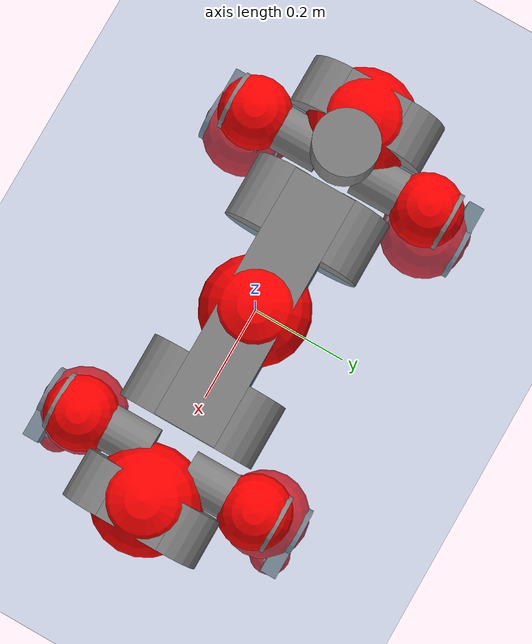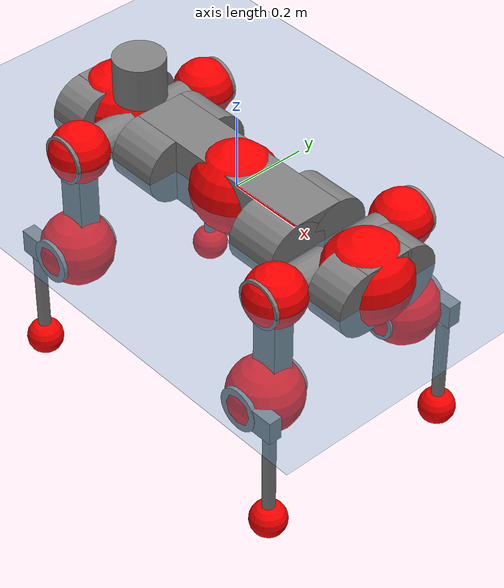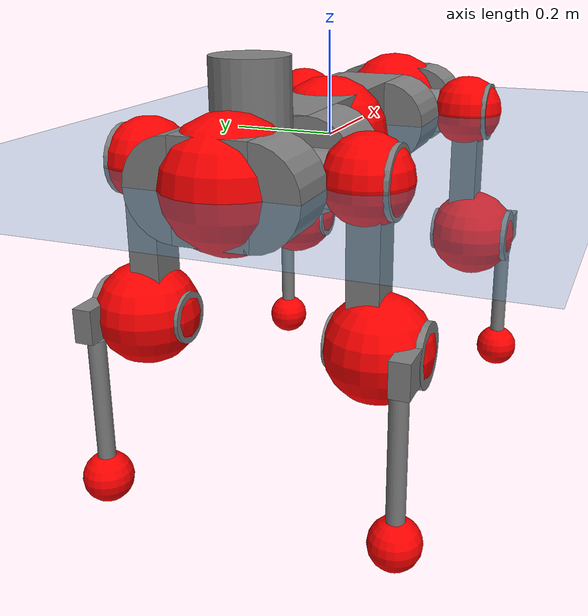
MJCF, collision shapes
<mujoco model="anymal_c">
  <compiler angle="radian" assetdir="assets" balanceinertia="true" inertiafromgeom="false"/>

  <option timestep="0.005" density="1.2" viscosity="2e-05"/>

  <size nkey="1"/>

  <visual>
    <quality shadowsize="8192"/>
    <map shadowclip="0.5"/>
  </visual>

  <default>
    <default class="/">
      <material specular="0" shininess="0.25"/>
      <geom contype="0" conaffinity="0" group="1" solref="-1000 -80"/>
      <site size="0.01 0.005 0.005" group="5"/>
      <general forcelimited="true" forcerange="-80 80" biastype="affine" gainprm="80" biasprm="0 -80 -2"/>
      <default class="anymal_c">
        <joint armature="0.01" damping="0.01" frictionloss="0.1"/>
        <default class="visual">
          <geom type="mesh" group="2"/>
          <default class="visual_zflip"/>
        </default>
        <default class="collision">
          <geom type="cylinder" group="3"/>
          <default class="foot">
            <geom size="0.03 0 0" type="sphere" condim="6" priority="1" friction="0.8 0.02 0.01" solimp="0.015 1 0.03"/>
          </default>
        </default>
      </default>
      <default class="reward_collision_sphere">
        <geom group="5" rgba="1 0 0 1"/>
      </default>
    </default>
  </default>

  <asset>
    <texture type="skybox" colorspace="auto" name="//unnamed_texture_0" builtin="gradient" rgb1="0.95 0.95 0.95" rgb2="0.95 0.95 0.95" width="100" height="600"/>
    <texture type="2d" colorspace="auto" name="texplane" builtin="checker" rgb1="0.345 0.575 0.748" rgb2="0.345 0.575 0.748" markrgb="1 1 1" width="512" height="512"/>
    <texture type="2d" colorspace="linear" name="base" file="base.png"/>
    <texture type="2d" colorspace="linear" name="top_shell" file="top_shell.png"/>
    <texture type="2d" colorspace="linear" name="bottom_shell" file="bottom_shell.png"/>
    <texture type="2d" colorspace="linear" name="remote" file="remote.png"/>
    <texture type="2d" colorspace="linear" name="hatch" file="hatch.png"/>
    <texture type="2d" colorspace="linear" name="handle" file="handle.png"/>
    <texture type="2d" colorspace="linear" name="face" file="face.png"/>
    <texture type="2d" colorspace="linear" name="battery" file="battery.png"/>
    <texture type="2d" colorspace="linear" name="lidar_cage" file="lidar_cage.png"/>
    <texture type="2d" colorspace="linear" name="depth_camera" file="depth_camera.png"/>
    <texture type="2d" colorspace="linear" name="wide_angle_camera" file="wide_angle_camera.png"/>
    <texture type="2d" colorspace="linear" name="lidar" file="lidar.png"/>
    <texture type="2d" colorspace="linear" name="drive" file="drive.png"/>
    <texture type="2d" colorspace="linear" name="hip_l" file="hip_l.png"/>
    <texture type="2d" colorspace="linear" name="shank_l" file="shank_l.png"/>
    <texture type="2d" colorspace="linear" name="foot" file="foot.png"/>
    <texture type="2d" colorspace="linear" name="thigh" file="thigh.png"/>
    <texture type="2d" colorspace="linear" name="shank_r" file="shank_r.png"/>
    <texture type="2d" colorspace="linear" name="hip_r" file="hip_r.png"/>
    <material name="MatPlane" class="/" texture="texplane" texuniform="true" texrepeat="2 2" specular="0.9" shininess="0.5"/>
    <material name="black_plastic" class="/" rgba="0.007 0.007 0.007 1"/>
    <material name="green" class="/" rgba="0.052 0.178 0.033 1"/>
    <material name="red" class="/" rgba="0.178 0.006 0.005 1"/>
    <material name="yellow" class="/" rgba="0.178 0.119 0.006 1"/>
    <material name="lwl" class="/" rgba="0.8 0.8 0.8 1"/>
    <material name="base" class="/" texture="base"/>
    <material name="top_shell" class="/" texture="top_shell"/>
    <material name="bottom_shell" class="/" texture="bottom_shell"/>
    <material name="hip_l" class="/" texture="hip_l"/>
    <material name="thigh" class="/" texture="thigh"/>
    <material name="shank_l" class="/" texture="shank_l"/>
    <material name="foot" class="/" texture="foot"/>
    <material name="hip_r" class="/" texture="hip_r"/>
    <material name="shank" class="/" texture="shank_r"/>
    <material name="hatch" class="/" texture="hatch"/>
    <material name="remote" class="/" texture="remote"/>
    <material name="handle" class="/" texture="handle"/>
    <material name="face" class="/" texture="face"/>
    <material name="depth_camera" class="/" texture="depth_camera"/>
    <material name="wide_angle_camera" class="/" texture="wide_angle_camera"/>
    <material name="battery" class="/" texture="battery"/>
    <material name="lidar_cage" class="/" texture="lidar_cage"/>
    <material name="lidar" class="/" texture="lidar"/>
    <material name="drive" class="/" texture="drive"/>
    <mesh name="base_0" class="/" file="base_0.obj"/>
    <mesh name="base_1" class="/" file="base_1.obj"/>
    <mesh name="base_2" class="/" file="base_2.obj"/>
    <mesh name="base_3" class="/" file="base_3.obj"/>
    <mesh name="base_4" class="/" file="base_4.obj"/>
    <mesh name="base_5" class="/" file="base_5.obj"/>
    <mesh name="top_shell" class="/" file="top_shell.obj"/>
    <mesh name="bottom_shell" class="/" file="bottom_shell.obj"/>
    <mesh name="remote" class="/" file="remote.obj"/>
    <mesh name="handle" class="/" file="handle.obj"/>
    <mesh name="face" class="/" file="face.obj"/>
    <mesh name="wide_angle_camera" class="/" file="wide_angle_camera.obj"/>
    <mesh name="depth_camera" class="/" file="depth_camera.obj"/>
    <mesh name="battery" class="/" file="battery.obj"/>
    <mesh name="lidar_cage" class="/" file="lidar_cage.obj"/>
    <mesh name="lidar" class="/" file="lidar.obj"/>
    <mesh name="drive" class="/" file="drive.obj"/>
    <mesh name="hip_l" class="/" file="hip_l.obj"/>
    <mesh name="thigh" class="/" file="thigh.obj"/>
    <mesh name="shank_l" class="/" file="shank_l.obj"/>
    <mesh name="foot" class="/" file="foot.obj"/>
    <mesh name="hip_r" class="/" file="hip_r.obj"/>
    <mesh name="hatch" class="/" file="hatch.obj"/>
    <mesh name="shank_r" class="/" file="shank_r.obj"/>
  </asset>

  <worldbody>
    <geom name="floor" class="/" size="100 100 0.125" type="plane" group="0" material="MatPlane"/>
    <light name="toplight_shadow" class="/" pos="0 0 5" dir="0.0990148 0.0990148 -0.990148" type="directional" ambient="0.04 0.04 0.04" diffuse="0.55 0.55 0.55" specular="0.12 0.12 0.12"/>
    <light name="toplight_fill" class="/" pos="0 0 5" dir="0.0990148 0.0990148 -0.990148" type="directional" castshadow="false" ambient="0.04 0.04 0.04" diffuse="0.3 0.3 0.3" specular="0.08 0.08 0.08"/>
    <body name="trunk" childclass="anymal_c" pos="0.000118612 4.06416e-05 -0.000612539" quat="1 -1.30188e-05 5.20851e-06 -5.86069e-06">
      <inertial pos="0.00261498 0.00204751 0.0493172" quat="0.499903 0.499881 0.500004 0.500213" mass="16.8677" diaginertia="0.540749 0.402246 0.211298"/>
      <joint name="//unnamed_joint_0" type="free" armature="0" damping="0" frictionloss="0"/>
      <geom name="//unnamed_geom_1" class="visual" material="green" mesh="base_0"/>
      <geom name="//unnamed_geom_2" class="visual" material="yellow" mesh="base_1"/>
      <geom name="//unnamed_geom_3" class="visual" material="red" mesh="base_2"/>
      <geom name="//unnamed_geom_4" class="visual" material="black_plastic" mesh="base_3"/>
      <geom name="//unnamed_geom_5" class="visual" material="lwl" mesh="base_4"/>
      <geom name="//unnamed_geom_6" class="visual" material="base" mesh="base_5"/>
      <geom name="trunk_1" class="collision" size="0.27751 0.0669851 0.0861238" type="box"/>
      <geom name="trunk_2" class="collision" size="0.0861238 0.0693775" pos="0.209304 0.0639938 0" quat="0.707107 0 0.707107 0"/>
      <geom name="trunk_3" class="collision" size="0.0861238 0.0693775" pos="-0.209304 0.0639938 0" quat="0.707107 0 0.707107 0"/>
      <geom name="trunk_4" class="collision" size="0.0861238 0.0693775" pos="0.209304 -0.0639938 0" quat="0.707107 0 0.707107 0"/>
      <geom name="trunk_5" class="collision" size="0.0861238 0.0693775" pos="-0.209304 -0.0639938 0" quat="0.707107 0 0.707107 0"/>
      <geom name="//unnamed_geom_12" class="visual" material="top_shell" mesh="top_shell"/>
      <geom name="//unnamed_geom_13" class="visual" material="bottom_shell" mesh="bottom_shell"/>
      <geom name="//unnamed_geom_14" class="visual" material="remote" mesh="remote"/>
      <geom name="//unnamed_geom_15" class="visual" material="handle" mesh="handle"/>
      <geom name="//unnamed_geom_16" class="visual" pos="0.39888 0 0" quat="1 0 0 0" material="face" mesh="face"/>
      <geom name="trunk_6" class="collision" size="0.0526312 0.0669851 0.0861238" pos="0.451807 0 0" type="box"/>
      <geom name="//unnamed_geom_18" class="collision" size="0.0861238 0.0526312" pos="0.451807 0.0639938 0" quat="0.707107 0 0.707107 0"/>
      <geom name="//unnamed_geom_19" class="collision" size="0.0861238 0.0526312" pos="0.451807 -0.0639938 0" quat="0.707107 0 0.707107 0"/>
      <geom name="//unnamed_geom_20" class="visual" pos="0.444254 0 -0.0292759" quat="0.965926 0 0.258819 0" material="depth_camera" mesh="depth_camera"/>
      <geom name="//unnamed_geom_21" class="visual" pos="0.493668 0 0.0148843" material="wide_angle_camera" mesh="wide_angle_camera"/>
      <geom name="//unnamed_geom_22" class="visual_zflip" pos="-0.39888 0 0" quat="0 0 0 1" material="face" mesh="face"/>
      <geom name="trunk_7" class="collision" size="0.0526312 0.0669851 0.0861238" pos="-0.451807 0 0" quat="0 0 0 1" type="box"/>
      <geom name="//unnamed_geom_24" class="collision" size="0.0861238 0.0526312" pos="-0.451807 -0.0639938 0" quat="0 -0.707107 0 0.707107"/>
      <geom name="//unnamed_geom_25" class="collision" size="0.0861238 0.0526312" pos="-0.451807 0.0639938 0" quat="0 -0.707107 0 0.707107"/>
      <geom name="//unnamed_geom_26" class="visual" pos="-0.444254 0 -0.0292759" quat="0 -0.258819 0 0.965926" material="depth_camera" mesh="depth_camera"/>
      <geom name="//unnamed_geom_27" class="visual_zflip" pos="-0.493668 0 0.0148843" quat="0 0 0 1" material="wide_angle_camera" mesh="wide_angle_camera"/>
      <geom name="//unnamed_geom_28" class="visual" material="battery" mesh="battery"/>
      <geom name="//unnamed_geom_29" class="visual" pos="0 0.0692695 0.0286409" quat="0.683013 -0.183013 0.183013 0.683013" material="depth_camera" mesh="depth_camera"/>
      <geom name="//unnamed_geom_30" class="visual" pos="0 -0.0692695 0.0286409" quat="0.683013 0.183013 0.183013 -0.683013" material="depth_camera" mesh="depth_camera"/>
      <geom name="//unnamed_geom_31" class="visual" pos="-0.350283 0 0.0730795" quat="1 0 0 0" material="lidar_cage" mesh="lidar_cage"/>
      <geom name="trunk_8" class="collision" size="0.0669851 0.0574158" pos="-0.350283 0 0.132736"/>
      <geom name="//unnamed_geom_33" class="visual" pos="-0.350283 -1.89041e-05 0.141386" quat="0.707107 0 0 -0.707107" material="lidar" mesh="lidar"/>
      <geom name="//unnamed_geom_34" class="visual" pos="0.288598 0.095105 -1.3814e-09" quat="0.258819 0.965926 0 0" material="drive" mesh="drive"/>
      <geom name="//unnamed_geom_35" class="visual" pos="0.288598 -0.095105 1.3814e-09" quat="0.258819 -0.965926 0 0" material="drive" mesh="drive"/>
      <geom name="//unnamed_geom_36" class="visual" pos="-0.288598 0.095105 1.3814e-09" quat="0 0 0.965926 -0.258819" material="drive" mesh="drive"/>
      <geom name="//unnamed_geom_37" class="visual" pos="-0.288598 -0.095105 -1.3814e-09" quat="0 0 -0.965926 -0.258819" material="drive" mesh="drive"/>
      <geom name="//unnamed_geom_38" class="visual" pos="0.111629 0 0.0725823" quat="1 0 0 0" material="hatch" mesh="hatch"/>
      <geom name="//unnamed_geom_39" class="reward_collision_sphere" size="0.114832"/>
      <geom name="//unnamed_geom_40" class="reward_collision_sphere" size="0.114832" pos="0.433042 0 0"/>
      <geom name="//unnamed_geom_41" class="reward_collision_sphere" size="0.114832" pos="-0.433042 0 0"/>
      <site name="imu" pos="0.234262 0.00967179 0.0408654" size="0.00956931"/>
      <camera name="track" pos="0 -1.8284 0" quat="0.707107 0.707107 0 0" mode="trackcom"/>
      <camera name="ego_camera" pos="0.433042 0 -0.0397711" quat="-0.5 -0.5 0.5 0.5"/>
      <body name="LF_HIP" pos="0.289295 0.095493 0.000554449" quat="0.258358 0.966049 5.12954e-05 -0.000210974">
        <inertial pos="0.0529813 -0.013505 -0.00751555" quat="-0.127302 0.710224 -0.13449 0.679182" mass="2.48882" diaginertia="0.0048866 0.0031969 0.00322278"/>
        <joint name="LF_HAA" pos="0 0 0" axis="0.999998 0.00184582 -0.000993643" range="-0.700709 0.489745" armature="0.00955018" damping="0.00749689" frictionloss="0.0887548"/>
        <geom name="//unnamed_geom_42" class="visual" pos="0 -8.12616e-05 1.33472e-05" quat="0.258819 -0.965926 0 0" material="hip_l" mesh="hip_l"/>
        <geom name="//unnamed_geom_43" class="visual" pos="0.0576427 -0.0692413 -0.0405688" quat="0.183013 -0.683013 0.683013 0.183013" material="drive" mesh="drive"/>
        <geom name="//unnamed_geom_44" class="collision" size="0.0478465 0.0669851" pos="0.0576427 -0.0109336 -0.00686549" quat="-0.353553 -0.612372 0.612372 -0.353553"/>
        <body name="LF_THIGH" pos="0.058112 -0.0661484 -0.0421386" quat="0.183278 -0.683005 0.682891 0.18323">
          <inertial pos="0.0300141 0.00014538 -0.243779" quat="0.993191 -0.00562364 -0.079975 0.0845203" mass="2.60677" diaginertia="0.0250327 0.0189091 0.00385733"/>
          <joint name="LF_HFE" pos="0 0 0" axis="0.999998 -0.0013025 -0.00153786" stiffness="0.00330144" range="-3.15106 3.11986" armature="0.00934513" damping="0.00876452" frictionloss="0.0982929"/>
          <geom name="//unnamed_geom_45" class="visual" pos="0.000957353 1.50856e-06 0" quat="0.707107 0 0 -0.707107" material="thigh" mesh="thigh"/>
          <geom name="//unnamed_geom_46" class="collision" size="0.0622005 0.0382772" pos="0.0384926 0 0" quat="0.5 0.5 -0.5 -0.5"/>
          <geom name="//unnamed_geom_47" class="collision" size="0.0358849 0.0287079 0.135228" pos="0.0288695 0 -0.140505" quat="0.707107 0 0 -0.707107" type="box"/>
          <geom name="//unnamed_geom_48" class="visual" pos="0.0965202 0 -0.283369" quat="1 0 0 0" material="drive" mesh="drive"/>
          <geom name="//unnamed_geom_49" class="collision" size="0.0478465 0.0669851" pos="0.0291582 0 -0.283369" quat="0.707107 0 0.707107 0"/>
          <geom name="//unnamed_geom_50" class="reward_collision_sphere" size="0.0765544" pos="0.0240579 0 0"/>
          <body name="LF_SHANK" pos="0.097276 -0.000186608 -0.283165" quat="0.999999 -0.00107232 0.000173958 4.9609e-06">
            <inertial pos="0.00477502 -0.0559845 -0.0804572" quat="0.992904 -0.116244 -0.00138862 -0.025047" mass="0.516753" diaginertia="0.0084002 0.00577892 0.00108268"/>
            <joint name="LF_KFE" pos="0 0 0" axis="1 -8.34378e-05 -0.000387448" range="-3.13256 3.14071" armature="0.00995485" damping="0.0158508" frictionloss="0.0926588"/>
            <geom name="//unnamed_geom_51" class="visual" pos="0.000312172 0.00166452 0" quat="0.707107 0 0 -0.707107" material="shank_l" mesh="shank_l"/>
            <geom name="LF_kfe_act" class="collision" size="0.0574158 0.0191386" pos="0.0192463 0 0" quat="0.5 0.5 -0.5 -0.5"/>
            <geom name="//unnamed_geom_53" class="collision" size="0.0550226 0.0322964 0.0181817" pos="0.0192463 -0.0525655 0" quat="0.5 0.5 -0.5 -0.5" type="box"/>
            <geom name="//unnamed_geom_54" class="visual" pos="0.0125581 -0.0798673 -0.336036" quat="0.382683 0 0 -0.92388" material="foot" mesh="foot"/>
            <geom name="LF_calf" class="collision" size="0.0167463 0.135168" pos="0.0125582 -0.0804037 -0.168018" quat="0.707107 0 0 -0.707107"/>
            <geom name="LF_foot" class="foot" size="0.0308419" pos="0.0125582 -0.0804037 -0.313665" quat="0.707107 0 0 -0.707107"/>
            <geom name="//unnamed_geom_57" class="reward_collision_sphere" size="0.0956931" pos="-0.0481158 0 0"/>
            <geom name="//unnamed_geom_58" class="reward_collision_sphere" size="0.0478465" pos="0.0125582 -0.0804037 -0.313665"/>
            <site name="LF_foot" class="foot" pos="0.0125582 -0.0804037 -0.313665" quat="0.707107 0 0 -0.707107" size="0.00956931"/>
          </body>
        </body>
      </body>
      <body name="RF_HIP" pos="0.288137 -0.0954448 0.000162053" quat="0.25895 -0.965891 -0.000470161 -9.73508e-05">
        <inertial pos="0.0546582 0.0143923 -0.00825323" quat="0.135441 0.678944 0.128412 0.710071" mass="2.35169" diaginertia="0.00469356 0.00309485 0.00319702"/>
        <joint name="RF_HAA" pos="0 0 0" axis="0.999995 0.000553884 0.00322207" range="-0.473013 0.682381" armature="0.0097081" damping="0.00502884" frictionloss="0.0950664"/>
        <geom name="//unnamed_geom_59" class="visual" pos="0 8.12609e-05 1.33471e-05" quat="0.258819 0.965926 0 0" material="hip_r" mesh="hip_r"/>
        <geom name="//unnamed_geom_60" class="visual" pos="0.0576427 0.0692413 -0.0405688" quat="0.183013 0.683013 0.683013 -0.183013" material="drive" mesh="drive"/>
        <geom name="//unnamed_geom_61" class="collision" size="0.0478465 0.0669851" pos="0.0576427 0.0109336 -0.00686549" quat="-0.353553 0.612372 0.612372 0.353553"/>
        <body name="RF_THIGH" pos="0.0603295 0.0660426 -0.0422322" quat="0.182702 0.683034 0.683179 -0.182625">
          <inertial pos="0.0296168 -0.000314115 -0.244004" quat="0.992774 -0.00529579 -0.0806162 0.0887253" mass="2.79474" diaginertia="0.0250655 0.0198874 0.00417564"/>
          <joint name="RF_HFE" pos="0 0 0" axis="0.999944 0.00886557 0.00580223" stiffness="0.0057307" range="-3.09401 3.09893" armature="0.00945387" damping="0.00189593" frictionloss="0.098447"/>
          <geom name="//unnamed_geom_62" class="visual" pos="0.000957353 1.50856e-06 0" quat="0.707107 0 0 -0.707107" material="thigh" mesh="thigh"/>
          <geom name="//unnamed_geom_63" class="collision" size="0.0622005 0.0382772" pos="0.0384926 0 0" quat="0.5 0.5 0.5 0.5"/>
          <geom name="//unnamed_geom_64" class="collision" size="0.0358849 0.0287079 0.135228" pos="0.0288695 0 -0.140505" quat="0.707107 0 0 0.707107" type="box"/>
          <geom name="//unnamed_geom_65" class="visual" pos="0.0965202 0 -0.283369" quat="1 0 0 0" material="drive" mesh="drive"/>
          <geom name="//unnamed_geom_66" class="collision" size="0.0478465 0.0669851" pos="0.0291582 0 -0.283369" quat="0.707107 0 0.707107 0"/>
          <geom name="//unnamed_geom_67" class="reward_collision_sphere" size="0.0765544" pos="0.0240579 0 0"/>
          <body name="RF_SHANK" pos="0.0983778 -0.000677711 -0.283777" quat="1 -4.79477e-05 1.30481e-05 1.55577e-05">
            <inertial pos="0.00651114 0.0565771 -0.077677" quat="0.993459 0.111656 -0.000783285 0.0239112" mass="0.500238" diaginertia="0.0083795 0.00591696 0.0010913"/>
            <joint name="RF_KFE" pos="0 0 0" axis="0.999908 0.0126239 -0.00499003" range="-3.15433 3.10738" armature="0.00963721" damping="0.0097098" frictionloss="0.0840229"/>
            <geom name="//unnamed_geom_68" class="visual" pos="0.00031217 -0.00166451 0" quat="0.707107 0 0 0.707107" material="shank" mesh="shank_r"/>
            <geom name="RF_kfe_act" class="collision" size="0.0574158 0.0191386" pos="0.0192463 0 0" quat="0.5 0.5 0.5 0.5"/>
            <geom name="//unnamed_geom_70" class="collision" size="0.0550226 0.0322964 0.0181817" pos="0.0192463 0.0525655 0" quat="0.5 0.5 0.5 0.5" type="box"/>
            <geom name="//unnamed_geom_71" class="visual" pos="0.0125583 0.0798673 -0.336036" quat="0.382683 0 0 0.92388" material="foot" mesh="foot"/>
            <geom name="RF_calf" class="collision" size="0.0167463 0.135168" pos="0.0125582 0.0804037 -0.168018" quat="0.707107 0 0 0.707107"/>
            <geom name="RF_foot" class="foot" size="0.029476" pos="0.0125582 0.0804037 -0.313665" quat="0.707107 0 0 0.707107"/>
            <geom name="//unnamed_geom_74" class="reward_collision_sphere" size="0.0956931" pos="-0.0481158 0 0"/>
            <geom name="//unnamed_geom_75" class="reward_collision_sphere" size="0.0478465" pos="0.0125582 0.0804037 -0.313665"/>
            <site name="RF_foot" class="foot" pos="0.0125582 0.0804037 -0.313665" quat="0.707107 0 0 0.707107" size="0.00956931"/>
          </body>
        </body>
      </body>
      <body name="LH_HIP" pos="-0.287859 0.0962974 0.000438278" quat="-4.73673e-07 4.92158e-06 0.965926 -0.258817">
        <inertial pos="0.0553631 0.0121664 -0.00824711" quat="0.127264 0.685029 0.121044 0.707027" mass="2.36215" diaginertia="0.00477502 0.00315216 0.00323392"/>
        <joint name="LH_HAA" pos="0 0 0" axis="0.999999 -0.00147661 0.000587975" range="-0.503421 0.738316" armature="0.00958794" damping="0.00813947" frictionloss="0.0929875"/>
        <geom name="//unnamed_geom_76" class="visual" pos="0 8.12609e-05 1.33471e-05" quat="-0.258819 -0.965926 0 0" material="hip_r" mesh="hip_r"/>
        <geom name="//unnamed_geom_77" class="visual" pos="0.0576427 0.0692413 -0.0405688" quat="0.183013 0.683013 0.683013 -0.183013" material="drive" mesh="drive"/>
        <geom name="//unnamed_geom_78" class="collision" size="0.0478465 0.0669851" pos="0.0576427 0.0109336 -0.00686549" quat="-0.353553 0.612372 0.612372 0.353553"/>
        <body name="LH_THIGH" pos="0.0569112 0.0649184 -0.0418115" quat="0.183019 0.68302 0.683006 -0.183002">
          <inertial pos="0.0307366 -0.000688808 -0.244022" quat="0.992694 -0.00351092 -0.0775704 0.0923585" mass="2.71509" diaginertia="0.0256344 0.0196679 0.00413339"/>
          <joint name="LH_HFE" pos="0 0 0" axis="0.999996 -0.00118995 0.00244216" range="-3.13918 3.14097" armature="0.00954877" damping="0.00845334" frictionloss="0.0949451"/>
          <geom name="//unnamed_geom_79" class="visual" pos="0.000957353 1.50856e-06 0" quat="0.707107 0 0 -0.707107" material="thigh" mesh="thigh"/>
          <geom name="//unnamed_geom_80" class="collision" size="0.0622005 0.0382772" pos="0.0384926 0 0" quat="0.5 0.5 -0.5 -0.5"/>
          <geom name="//unnamed_geom_81" class="collision" size="0.0358849 0.0287079 0.135228" pos="0.0288695 0 -0.140505" quat="0.707107 0 0 -0.707107" type="box"/>
          <geom name="//unnamed_geom_82" class="visual" pos="0.0965202 0 -0.283369" quat="1 0 0 0" material="drive" mesh="drive"/>
          <geom name="//unnamed_geom_83" class="collision" size="0.0478465 0.0669851" pos="0.0291582 0 -0.283369" quat="0.707107 0 0.707107 0"/>
          <geom name="//unnamed_geom_84" class="reward_collision_sphere" size="0.0765544" pos="0.0240579 0 0"/>
          <body name="LH_SHANK" pos="0.0976064 -0.000695348 -0.283753" quat="1 -2.1836e-05 -0.000180159 -0.00045854">
            <inertial pos="0.00631412 0.0569438 -0.0805776" quat="0.992934 0.115904 -0.00105611 0.0254427" mass="0.519919" diaginertia="0.00875581 0.0062316 0.0011566"/>
            <joint name="LH_KFE" pos="0 0 0" axis="0.999992 -0.00250564 -0.00320788" stiffness="0.000452522" range="-3.14583 3.09013" armature="0.00940475" damping="0.0136571" frictionloss="0.0922546"/>
            <geom name="//unnamed_geom_85" class="visual" pos="0.00031217 -0.00166451 0" quat="-0.707107 0 0 -0.707107" material="shank" mesh="shank_r"/>
            <geom name="LH_kfe_act" class="collision" size="0.0574158 0.0191386" pos="0.0192463 0 0" quat="0.5 0.5 -0.5 -0.5"/>
            <geom name="//unnamed_geom_87" class="collision" size="0.0550226 0.0322964 0.0181817" pos="0.0192463 0.0525655 0" quat="0.5 0.5 -0.5 -0.5" type="box"/>
            <geom name="//unnamed_geom_88" class="visual" pos="0.0125583 0.0798673 -0.336036" quat="-0.382683 0 0 -0.92388" material="foot" mesh="foot"/>
            <geom name="LH_calf" class="collision" size="0.0167463 0.135168" pos="0.0125582 0.0804037 -0.168018" quat="0.707107 0 0 -0.707107"/>
            <geom name="LH_foot" class="foot" size="0.027617" pos="0.0125582 0.0804037 -0.313665" quat="0.707107 0 0 -0.707107"/>
            <geom name="//unnamed_geom_91" class="reward_collision_sphere" size="0.0956931" pos="-0.0481158 0 0"/>
            <geom name="//unnamed_geom_92" class="reward_collision_sphere" size="0.0478465" pos="0.0125582 0.0804037 -0.313665"/>
            <site name="LH_foot" class="foot" pos="0.0125582 0.0804037 -0.313665" quat="0.707107 0 0 -0.707107" size="0.00956931"/>
          </body>
        </body>
      </body>
      <body name="RH_HIP" pos="-0.288349 -0.0942242 -5.02411e-05" quat="0.000186633 -0.000175127 -0.965696 -0.259676">
        <inertial pos="0.0540655 -0.0148099 -0.00761907" quat="-0.124814 0.713214 -0.1241 0.678488" mass="2.45453" diaginertia="0.00482045 0.00315798 0.00319407"/>
        <joint name="RH_HAA" pos="0 0 0" axis="0.999991 -0.00428449 -0.000389031" stiffness="0.000666339" range="-0.756074 0.476704" armature="0.00866904" damping="0.0103699" frictionloss="0.0959319"/>
        <geom name="//unnamed_geom_93" class="visual" pos="0 -8.12616e-05 1.33472e-05" quat="-0.258819 0.965926 0 0" material="hip_l" mesh="hip_l"/>
        <geom name="//unnamed_geom_94" class="visual" pos="0.0576427 -0.0692413 -0.0405688" quat="-0.183013 0.683013 -0.683013 -0.183013" material="drive" mesh="drive"/>
        <geom name="//unnamed_geom_95" class="collision" size="0.0478465 0.0669851" pos="0.0576427 -0.0109336 -0.00686549" quat="0.353553 0.612372 -0.612372 0.353553"/>
        <body name="RH_THIGH" pos="0.0572889 -0.0658467 -0.0439899" quat="-0.182883 0.68297 -0.683093 -0.183002">
          <inertial pos="0.0299049 0.00241066 -0.244351" quat="0.993214 -0.0106811 -0.0794901 0.0842162" mass="2.60042" diaginertia="0.0240823 0.0185519 0.003914"/>
          <joint name="RH_HFE" pos="0 0 0" axis="0.999998 -0.000904581 -0.00180121" range="-3.1594 3.10392" armature="0.0108481" damping="0.0089829" frictionloss="0.091043"/>
          <geom name="//unnamed_geom_96" class="visual" pos="0.000957353 1.50856e-06 0" quat="0.707107 0 0 -0.707107" material="thigh" mesh="thigh"/>
          <geom name="//unnamed_geom_97" class="collision" size="0.0622005 0.0382772" pos="0.0384926 0 0" quat="0.5 0.5 0.5 0.5"/>
          <geom name="//unnamed_geom_98" class="collision" size="0.0358849 0.0287079 0.135228" pos="0.0288695 0 -0.140505" quat="0.707107 0 0 0.707107" type="box"/>
          <geom name="//unnamed_geom_99" class="visual" pos="0.0965202 0 -0.283369" quat="1 0 0 0" material="drive" mesh="drive"/>
          <geom name="//unnamed_geom_100" class="collision" size="0.0478465 0.0669851" pos="0.0291582 0 -0.283369" quat="0.707107 0 0.707107 0"/>
          <geom name="//unnamed_geom_101" class="reward_collision_sphere" size="0.0765544" pos="0.0240579 0 0"/>
          <body name="RH_SHANK" pos="0.0958431 -0.000361942 -0.284379" quat="1 -2.77402e-05 0.000440492 -0.000113215">
            <inertial pos="0.00473497 -0.0556029 -0.0804736" quat="0.992438 -0.117773 0.00588067 -0.0340929" mass="0.507244" diaginertia="0.00843365 0.00601766 0.00113013"/>
            <joint name="RH_KFE" pos="0 0 0" axis="0.999991 -0.0035955 -0.002327" stiffness="0.00480422" range="-3.09787 3.17062" armature="0.00945052" damping="0.00842557" frictionloss="0.0966348"/>
            <geom name="//unnamed_geom_102" class="visual" pos="0.000312172 0.00166452 0" quat="0.707107 0 0 -0.707107" material="shank_l" mesh="shank_l"/>
            <geom name="RH_kfe_act" class="collision" size="0.0574158 0.0191386" pos="0.0192463 0 0" quat="0.5 0.5 0.5 0.5"/>
            <geom name="//unnamed_geom_104" class="collision" size="0.0550226 0.0322964 0.0181817" pos="0.0192463 -0.0525655 0" quat="0.5 0.5 0.5 0.5" type="box"/>
            <geom name="//unnamed_geom_105" class="visual" pos="0.0125581 -0.0798673 -0.336036" quat="0.382683 0 0 -0.92388" material="foot" mesh="foot"/>
            <geom name="RH_calf" class="collision" size="0.0167463 0.135168" pos="0.0125582 -0.0804037 -0.168018" quat="0.707107 0 0 0.707107"/>
            <geom name="RH_foot" class="foot" size="0.0246768" pos="0.0125582 -0.0804037 -0.313665" quat="0.707107 0 0 0.707107"/>
            <geom name="//unnamed_geom_108" class="reward_collision_sphere" size="0.0956931" pos="-0.0481158 0 0"/>
            <geom name="//unnamed_geom_109" class="reward_collision_sphere" size="0.0478465" pos="0.0125582 -0.0804037 -0.313665"/>
            <site name="RH_foot" class="foot" pos="0.0125582 -0.0804037 -0.313665" quat="0.707107 0 0 0.707107" size="0.00956931"/>
          </body>
        </body>
      </body>
    </body>
  </worldbody>

  <contact>
    <pair class="/" geom1="floor" geom2="LF_foot" name="//unnamed_contact_0"/>
    <pair class="/" geom1="floor" geom2="RF_foot" name="//unnamed_contact_1"/>
    <pair class="/" geom1="floor" geom2="LH_foot" name="//unnamed_contact_2"/>
    <pair class="/" geom1="floor" geom2="RH_foot" name="//unnamed_contact_3"/>
  </contact>

  <actuator>
    <general name="LF_HAA" class="/" joint="LF_HAA" forcerange="-78.8191 78.8191" gainprm="81.0022" biasprm="0 -81.0022 -1.90935"/>
    <general name="LF_HFE" class="/" joint="LF_HFE" forcerange="-69.7254 69.7254" gainprm="81.0022" biasprm="0 -81.0022 -1.90935"/>
    <general name="LF_KFE" class="/" joint="LF_KFE" forcerange="-74.8998 74.8998" gainprm="81.0022" biasprm="0 -81.0022 -1.90935"/>
    <general name="RF_HAA" class="/" joint="RF_HAA" forcerange="-79.5306 79.5306" gainprm="81.0022" biasprm="0 -81.0022 -1.90935"/>
    <general name="RF_HFE" class="/" joint="RF_HFE" forcerange="-75.035 75.035" gainprm="81.0022" biasprm="0 -81.0022 -1.90935"/>
    <general name="RF_KFE" class="/" joint="RF_KFE" forcerange="-79.1975 79.1975" gainprm="81.0022" biasprm="0 -81.0022 -1.90935"/>
    <general name="LH_HAA" class="/" joint="LH_HAA" forcerange="-78.0552 78.0552" gainprm="81.0022" biasprm="0 -81.0022 -1.90935"/>
    <general name="LH_HFE" class="/" joint="LH_HFE" forcerange="-76.5968 76.5968" gainprm="81.0022" biasprm="0 -81.0022 -1.90935"/>
    <general name="LH_KFE" class="/" joint="LH_KFE" forcerange="-79.4965 79.4965" gainprm="81.0022" biasprm="0 -81.0022 -1.90935"/>
    <general name="RH_HAA" class="/" joint="RH_HAA" forcerange="-70.1889 70.1889" gainprm="81.0022" biasprm="0 -81.0022 -1.90935"/>
    <general name="RH_HFE" class="/" joint="RH_HFE" forcerange="-76.7437 76.7437" gainprm="81.0022" biasprm="0 -81.0022 -1.90935"/>
    <general name="RH_KFE" class="/" joint="RH_KFE" forcerange="-77.8741 77.8741" gainprm="81.0022" biasprm="0 -81.0022 -1.90935"/>
  </actuator>

  <sensor>
    <gyro site="imu" name="imu_angular_velocity"/>
    <velocimeter site="imu" name="imu_linear_velocity"/>
    <framelinvel objtype="site" objname="LF_foot" name="LF_foot_global_linear_velocity"/>
    <framelinvel objtype="site" objname="RF_foot" name="RF_foot_global_linear_velocity"/>
    <framelinvel objtype="site" objname="LH_foot" name="LH_foot_global_linear_velocity"/>
    <framelinvel objtype="site" objname="RH_foot" name="RH_foot_global_linear_velocity"/>
  </sensor>

  <keyframe>
    <key name="home" qpos="0 0 0.55 1 0 0 0 0 0.4 -0.8 0 -0.4 0.8 0 -0.4 0.8 0 0.4 -0.8"/>
  </keyframe>
</mujoco>
